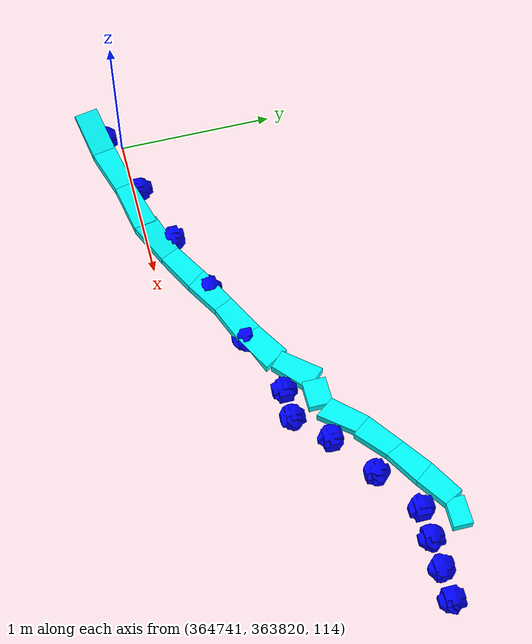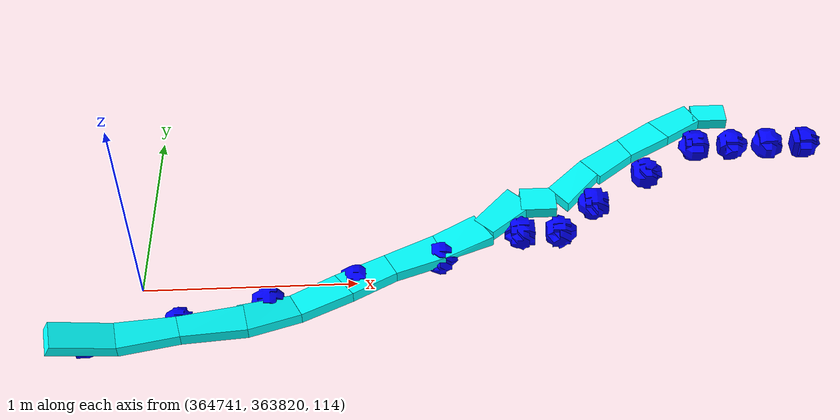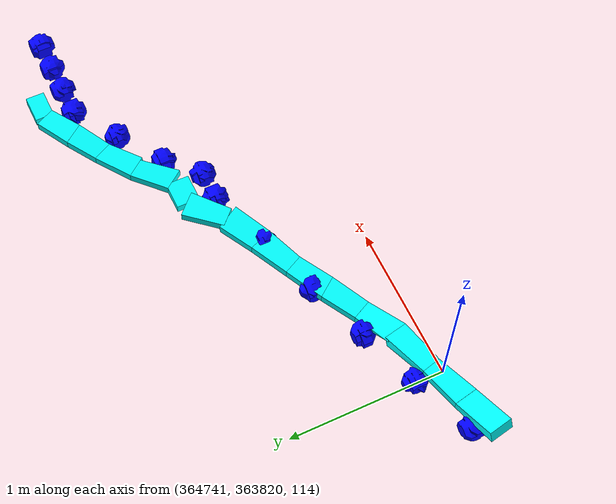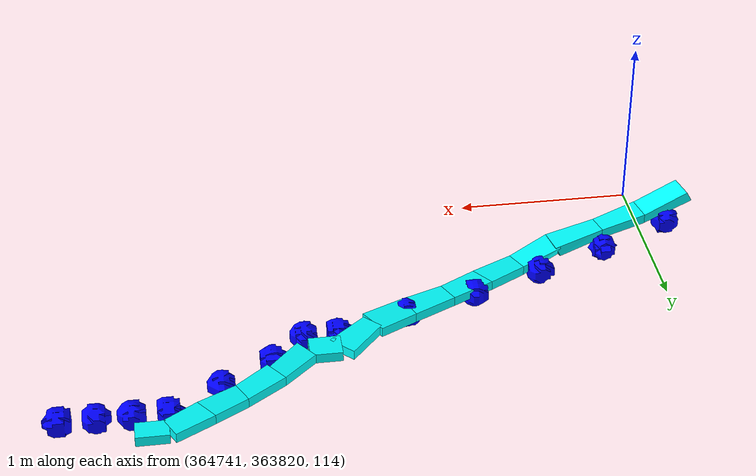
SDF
<sdf version="1.5">
 <world name="default">
  <include><uri>model://sun</uri></include>
  <model name="normal_astar_segment_286">
   <static>true</static>
   <pose>364740.7141935484 363819.86258064513 113.84451613146261 0 0.31899613346586764 0.2397431089040901</pose>
   <link name="link">
    <visual name="visual">
     <geometry><box><size>0.31474945884043515 0.15 0.06</size></box></geometry>
     <material><ambient>0 1 1 1</ambient><diffuse>0 1 1 1</diffuse><emissive>0 1 1 1</emissive></material>
    </visual>
   </link>
  </model>
  <model name="normal_astar_segment_287">
   <static>true</static>
   <pose>364741.00451612903 363819.9335483871 113.77387096972531 0 0.1415194513839081 0.2397431087611477</pose>
   <link name="link">
    <visual name="visual">
     <geometry><box><size>0.3018886094902527 0.15 0.06</size></box></geometry>
     <material><ambient>0 1 1 1</ambient><diffuse>0 1 1 1</diffuse><emissive>0 1 1 1</emissive></material>
    </visual>
   </link>
  </model>
  <model name="normal_astar_segment_288">
   <static>true</static>
   <pose>364741.29483870964 363820.00451612903 113.73129032457472 0 0.14151945146562836 0.2397431089040901</pose>
   <link name="link">
    <visual name="visual">
     <geometry><box><size>0.30188860956484254 0.15 0.06</size></box></geometry>
     <material><ambient>0 1 1 1</ambient><diffuse>0 1 1 1</diffuse><emissive>0 1 1 1</emissive></material>
    </visual>
   </link>
  </model>
  <model name="normal_astar_segment_289">
   <static>true</static>
   <pose>364741.56 363820.1 113.68500000099534 0 0.18422615011043167 0.4636476090008061</pose>
   <link name="link">
    <visual name="visual">
     <geometry><box><size>0.2729468816335573 0.15 0.06</size></box></geometry>
     <material><ambient>0 1 1 1</ambient><diffuse>0 1 1 1</diffuse><emissive>0 1 1 1</emissive></material>
    </visual>
   </link>
  </model>
  <model name="normal_astar_segment_290">
   <static>true</static>
   <pose>364741.8 363820.22 113.66 0 -1.0592145720932727e-13 0.4636476090008061</pose>
   <link name="link">
    <visual name="visual">
     <geometry><box><size>0.2683281572895623 0.15 0.06</size></box></geometry>
     <material><ambient>0 1 1 1</ambient><diffuse>0 1 1 1</diffuse><emissive>0 1 1 1</emissive></material>
    </visual>
   </link>
  </model>
  <model name="normal_astar_segment_291">
   <static>true</static>
   <pose>364742.04000000004 363820.33999999997 113.66000000000001 0 -0.0 0.4636476090978189</pose>
   <link name="link">
    <visual name="visual">
     <geometry><box><size>0.26832815736765603 0.15 0.06</size></box></geometry>
     <material><ambient>0 1 1 1</ambient><diffuse>0 1 1 1</diffuse><emissive>0 1 1 1</emissive></material>
    </visual>
   </link>
  </model>
  <model name="normal_astar_segment_292">
   <static>true</static>
   <pose>364742.28 363820.46 113.66000000000001 0 5.2960728604663636e-14 0.4636476090008061</pose>
   <link name="link">
    <visual name="visual">
     <geometry><box><size>0.2683281572895623 0.15 0.06</size></box></geometry>
     <material><ambient>0 1 1 1</ambient><diffuse>0 1 1 1</diffuse><emissive>0 1 1 1</emissive></material>
    </visual>
   </link>
  </model>
  <model name="normal_astar_segment_293">
   <static>true</static>
   <pose>364742.52 363820.58 113.66499999991704 0 -0.03725055976187678 0.4636476090008061</pose>
   <link name="link">
    <visual name="visual">
     <geometry><box><size>0.26851443162536764 0.15 0.06</size></box></geometry>
     <material><ambient>0 1 1 1</ambient><diffuse>0 1 1 1</diffuse><emissive>0 1 1 1</emissive></material>
    </visual>
   </link>
  </model>
  <model name="normal_astar_segment_294">
   <static>true</static>
   <pose>364742.74 363820.74 113.66999999991704 0 -5.864860566127646e-10 0.7853981633974483</pose>
   <link name="link">
    <visual name="visual">
     <geometry><box><size>0.2828427124910826 0.15 0.06</size></box></geometry>
     <material><ambient>0 1 1 1</ambient><diffuse>0 1 1 1</diffuse><emissive>0 1 1 1</emissive></material>
    </visual>
   </link>
  </model>
  <model name="normal_astar_segment_295">
   <static>true</static>
   <pose>364742.94 363820.84 113.66999999999999 0 -0.0 0.0</pose>
   <link name="link">
    <visual name="visual">
     <geometry><box><size>0.19999999995343387 0.15 0.06</size></box></geometry>
     <material><ambient>0 1 1 1</ambient><diffuse>0 1 1 1</diffuse><emissive>0 1 1 1</emissive></material>
    </visual>
   </link>
  </model>
  <model name="normal_astar_segment_296">
   <static>true</static>
   <pose>364743.14 363820.94 113.67499999991558 0 -0.03534061811380125 0.7853981632519291</pose>
   <link name="link">
    <visual name="visual">
     <geometry><box><size>0.28301943393105417 0.15 0.06</size></box></geometry>
     <material><ambient>0 1 1 1</ambient><diffuse>0 1 1 1</diffuse><emissive>0 1 1 1</emissive></material>
    </visual>
   </link>
  </model>
  <model name="normal_astar_segment_297">
   <static>true</static>
   <pose>364743.33999999997 363821.1066666667 113.6799999999156 0 -7.0223602187462e-10 0.5880026036147302</pose>
   <link name="link">
    <visual name="visual">
     <geometry><box><size>0.2403700850556866 0.15 0.06</size></box></geometry>
     <material><ambient>0 1 1 1</ambient><diffuse>0 1 1 1</diffuse><emissive>0 1 1 1</emissive></material>
    </visual>
   </link>
  </model>
  <model name="normal_astar_segment_298">
   <static>true</static>
   <pose>364743.54000000004 363821.24 113.6849999999156 0 -0.04157853746026479 0.5880026034132422</pose>
   <link name="link">
    <visual name="visual">
     <geometry><box><size>0.24057800766233894 0.15 0.06</size></box></geometry>
     <material><ambient>0 1 1 1</ambient><diffuse>0 1 1 1</diffuse><emissive>0 1 1 1</emissive></material>
    </visual>
   </link>
  </model>
  <model name="normal_astar_segment_299">
   <static>true</static>
   <pose>364743.74 363821.3733333333 113.6899999999156 0 -7.021769011453831e-10 0.5880026036147302</pose>
   <link name="link">
    <visual name="visual">
     <geometry><box><size>0.2403700850556866 0.15 0.06</size></box></geometry>
     <material><ambient>0 1 1 1</ambient><diffuse>0 1 1 1</diffuse><emissive>0 1 1 1</emissive></material>
    </visual>
   </link>
  </model>
  <model name="normal_astar_segment_300">
   <static>true</static>
   <pose>364743.94 363821.44 113.69 0 -0.0 0.0</pose>
   <link name="link">
    <visual name="visual">
     <geometry><box><size>0.19999999995343387 0.15 0.06</size></box></geometry>
     <material><ambient>0 1 1 1</ambient><diffuse>0 1 1 1</diffuse><emissive>0 1 1 1</emissive></material>
    </visual>
   </link>
  </model>
  <model name="dijkstra_marker_180">
   <static>true</static>
   <pose>364740.6971428572 363819.92571428575 113.74857143052222 0 0 0</pose>
   <link name="link">
    <visual name="visual">
     <geometry><sphere><radius>0.08</radius></sphere></geometry>
     <material><ambient>0 0 1 1</ambient><diffuse>0 0 1 1</diffuse><emissive>0 0 1 1</emissive></material>
    </visual>
   </link>
  </model>
  <model name="dijkstra_marker_181">
   <static>true</static>
   <pose>364741.12571428576 363820.0685714286 113.68 0 0 0</pose>
   <link name="link">
    <visual name="visual">
     <geometry><sphere><radius>0.08</radius></sphere></geometry>
     <material><ambient>0 0 1 1</ambient><diffuse>0 0 1 1</diffuse><emissive>0 0 1 1</emissive></material>
    </visual>
   </link>
  </model>
  <model name="dijkstra_marker_182">
   <static>true</static>
   <pose>364741.5542857143 363820.21142857143 113.65142857224556 0 0 0</pose>
   <link name="link">
    <visual name="visual">
     <geometry><sphere><radius>0.08</radius></sphere></geometry>
     <material><ambient>0 0 1 1</ambient><diffuse>0 0 1 1</diffuse><emissive>0 0 1 1</emissive></material>
    </visual>
   </link>
  </model>
  <model name="dijkstra_marker_183">
   <static>true</static>
   <pose>364741.98285714287 363820.3542857143 113.63000000000002 0 0 0</pose>
   <link name="link">
    <visual name="visual">
     <geometry><sphere><radius>0.08</radius></sphere></geometry>
     <material><ambient>0 0 1 1</ambient><diffuse>0 0 1 1</diffuse><emissive>0 0 1 1</emissive></material>
    </visual>
   </link>
  </model>
  <model name="dijkstra_marker_184">
   <static>true</static>
   <pose>364742.41142857145 363820.4971428572 113.63 0 0 0</pose>
   <link name="link">
    <visual name="visual">
     <geometry><sphere><radius>0.08</radius></sphere></geometry>
     <material><ambient>0 0 1 1</ambient><diffuse>0 0 1 1</diffuse><emissive>0 0 1 1</emissive></material>
    </visual>
   </link>
  </model>
  <model name="dijkstra_marker_185">
   <static>true</static>
   <pose>364742.84 363820.64 113.64 0 0 0</pose>
   <link name="link">
    <visual name="visual">
     <geometry><sphere><radius>0.08</radius></sphere></geometry>
     <material><ambient>0 0 1 1</ambient><diffuse>0 0 1 1</diffuse><emissive>0 0 1 1</emissive></material>
    </visual>
   </link>
  </model>
  <model name="dijkstra_marker_186">
   <static>true</static>
   <pose>364743.04 363820.64 113.64 0 0 0</pose>
   <link name="link">
    <visual name="visual">
     <geometry><sphere><radius>0.08</radius></sphere></geometry>
     <material><ambient>0 0 1 1</ambient><diffuse>0 0 1 1</diffuse><emissive>0 0 1 1</emissive></material>
    </visual>
   </link>
  </model>
  <model name="dijkstra_marker_187">
   <static>true</static>
   <pose>364743.24 363820.84 113.64 0 0 0</pose>
   <link name="link">
    <visual name="visual">
     <geometry><sphere><radius>0.08</radius></sphere></geometry>
     <material><ambient>0 0 1 1</ambient><diffuse>0 0 1 1</diffuse><emissive>0 0 1 1</emissive></material>
    </visual>
   </link>
  </model>
  <model name="dijkstra_marker_188">
   <static>true</static>
   <pose>364743.54000000004 363821.04000000004 113.65499999983265 0 0 0</pose>
   <link name="link">
    <visual name="visual">
     <geometry><sphere><radius>0.08</radius></sphere></geometry>
     <material><ambient>0 0 1 1</ambient><diffuse>0 0 1 1</diffuse><emissive>0 0 1 1</emissive></material>
    </visual>
   </link>
  </model>
  <model name="dijkstra_marker_189">
   <static>true</static>
   <pose>364743.84 363821.24 113.66000000000001 0 0 0</pose>
   <link name="link">
    <visual name="visual">
     <geometry><sphere><radius>0.08</radius></sphere></geometry>
     <material><ambient>0 0 1 1</ambient><diffuse>0 0 1 1</diffuse><emissive>0 0 1 1</emissive></material>
    </visual>
   </link>
  </model>
  <model name="dijkstra_marker_190">
   <static>true</static>
   <pose>364744.04 363821.24 113.66000000000001 0 0 0</pose>
   <link name="link">
    <visual name="visual">
     <geometry><sphere><radius>0.08</radius></sphere></geometry>
     <material><ambient>0 0 1 1</ambient><diffuse>0 0 1 1</diffuse><emissive>0 0 1 1</emissive></material>
    </visual>
   </link>
  </model>
  <model name="dijkstra_marker_191">
   <static>true</static>
   <pose>364744.24 363821.24 113.66000000000001 0 0 0</pose>
   <link name="link">
    <visual name="visual">
     <geometry><sphere><radius>0.08</radius></sphere></geometry>
     <material><ambient>0 0 1 1</ambient><diffuse>0 0 1 1</diffuse><emissive>0 0 1 1</emissive></material>
    </visual>
   </link>
  </model>
  <model name="dijkstra_marker_192">
   <static>true</static>
   <pose>364744.44 363821.24 113.66000000000001 0 0 0</pose>
   <link name="link">
    <visual name="visual">
     <geometry><sphere><radius>0.08</radius></sphere></geometry>
     <material><ambient>0 0 1 1</ambient><diffuse>0 0 1 1</diffuse><emissive>0 0 1 1</emissive></material>
    </visual>
   </link>
  </model>
 </world>
</sdf>
